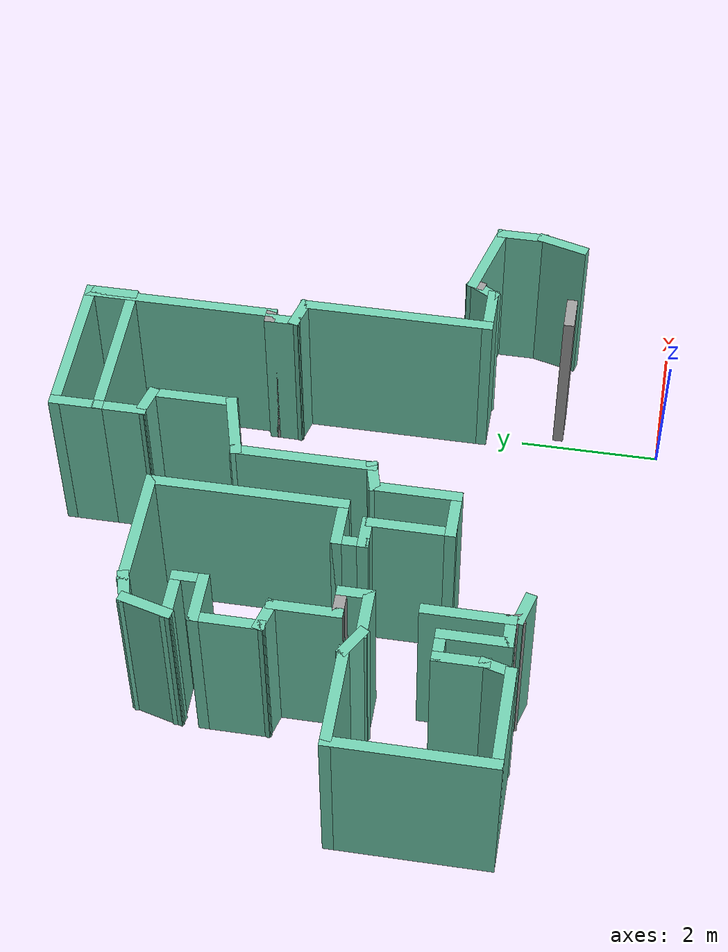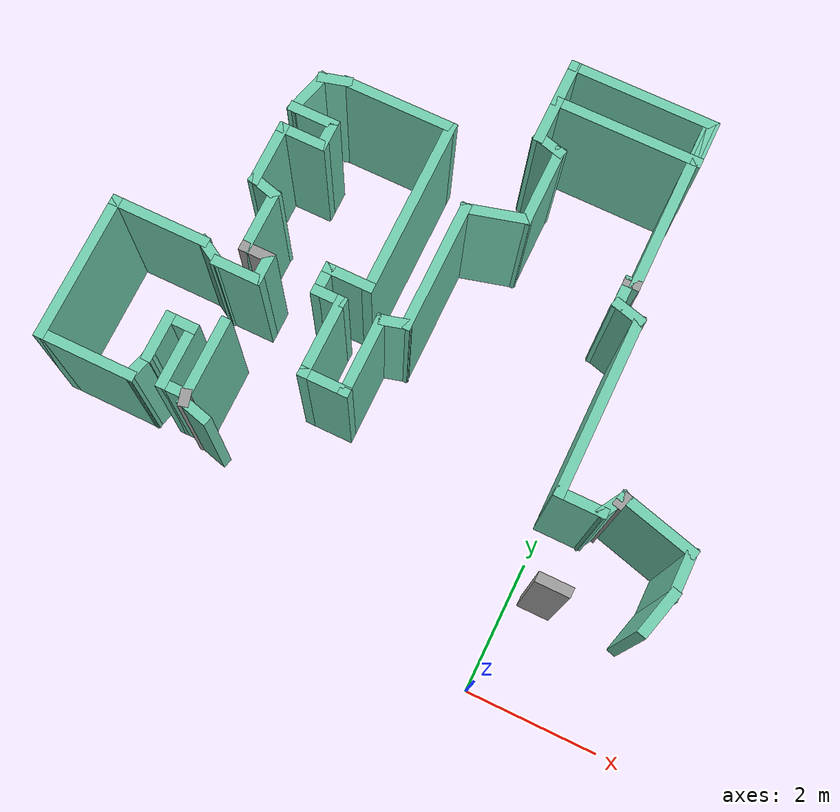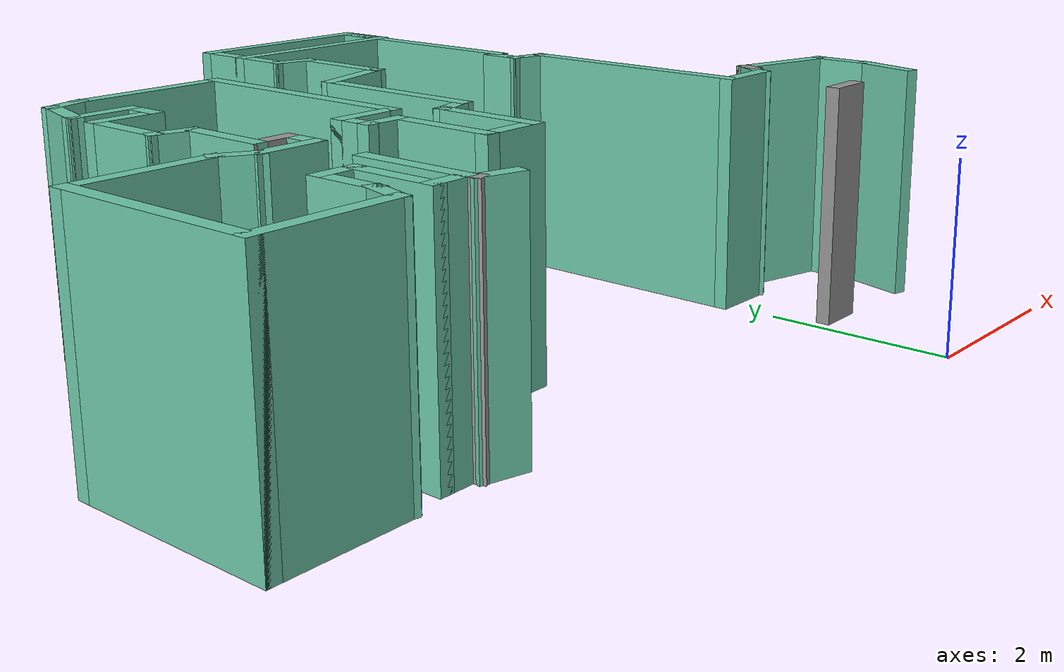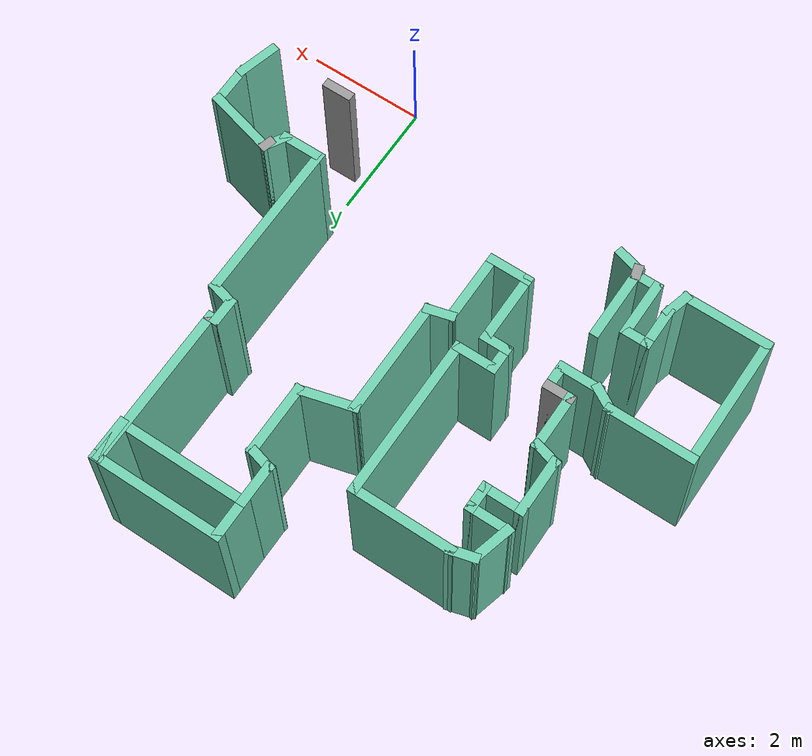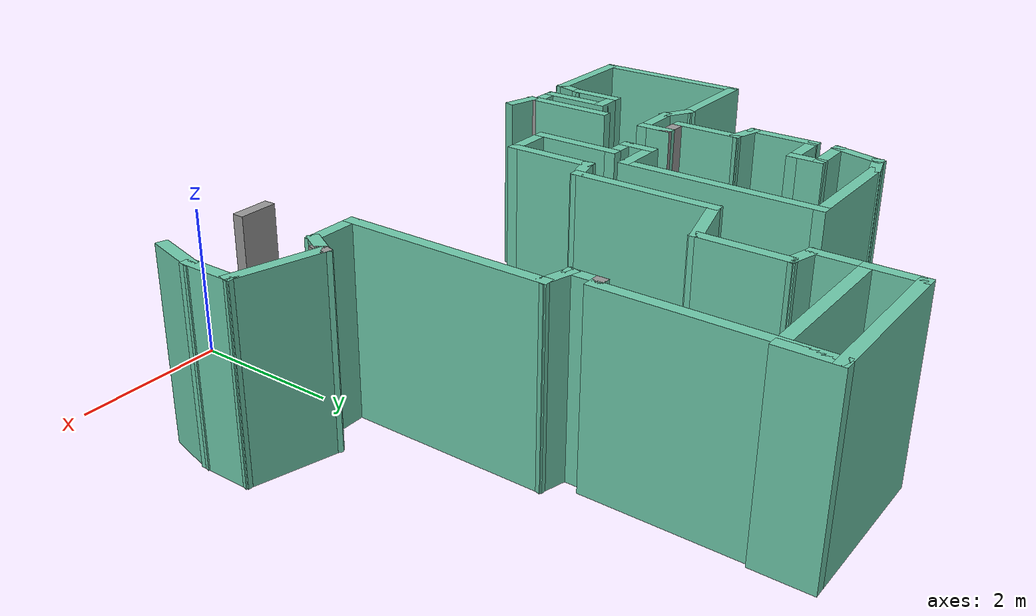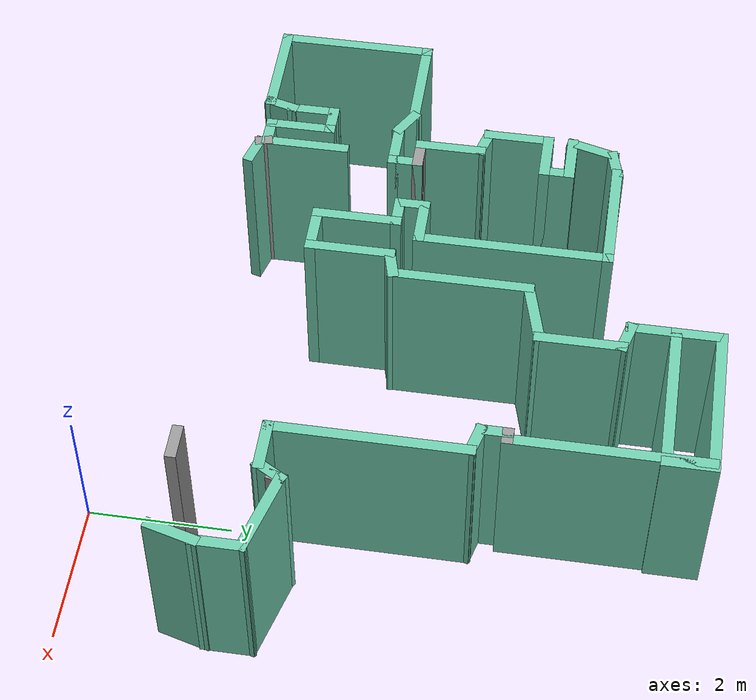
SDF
<sdf version="1.6">
 <model name="map_3">
  <pose>-1.57368 2.22942 0 0 -0 0</pose>
  <link name="Wall_0">
   <collision name="Wall_0_Collision">
    <geometry><box><size>2.25 0.15 2.5</size></box></geometry>
    <pose>0 0 1.25 0 -0 0</pose>
   </collision>
   <visual name="Wall_0_Visual">
    <pose>0 0 1.25 0 -0 0</pose>
    <geometry><box><size>2.25 0.15 2.5</size></box></geometry>
    <material>
     <script><uri>file://media/materials/scripts/gazebo.material</uri><name>Gazebo/Grey</name></script>
     <ambient>0.435294 0.796078 0.67451 1</ambient>
    </material>
    <meta><layer>0</layer></meta>
   </visual>
   <pose>0.303175 6.04258 0 0 -0 3.14159</pose>
  </link>
  <link name="Wall_1">
   <collision name="Wall_1_Collision">
    <geometry><box><size>0.75 0.15 2.5</size></box></geometry>
    <pose>0 0 1.25 0 -0 0</pose>
   </collision>
   <visual name="Wall_1_Visual">
    <pose>0 0 1.25 0 -0 0</pose>
    <geometry><box><size>0.75 0.15 2.5</size></box></geometry>
    <material>
     <script><uri>file://media/materials/scripts/gazebo.material</uri><name>Gazebo/Grey</name></script>
     <ambient>0.435294 0.796078 0.67451 1</ambient>
    </material>
    <meta><layer>0</layer></meta>
   </visual>
   <pose>-0.746825 5.74258 0 0 -0 -1.5708</pose>
  </link>
  <link name="Wall_10">
   <collision name="Wall_10_Collision">
    <geometry><box><size>0.5 0.15 2.5</size></box></geometry>
    <pose>0 0 1.25 0 -0 0</pose>
   </collision>
   <visual name="Wall_10_Visual">
    <pose>0 0 1.25 0 -0 0</pose>
    <geometry><box><size>0.5 0.15 2.5</size></box></geometry>
    <material>
     <script><uri>file://media/materials/scripts/gazebo.material</uri><name>Gazebo/Grey</name></script>
     <ambient>0.435294 0.796078 0.67451 1</ambient>
    </material>
    <meta><layer>0</layer></meta>
   </visual>
   <pose>-1.39882 1.53671 0 0 -0 -2.87979</pose>
  </link>
  <link name="Wall_101">
   <collision name="Wall_101_Collision">
    <geometry><box><size>0.75 0.15 2.5</size></box></geometry>
    <pose>0 0 1.25 0 -0 0</pose>
   </collision>
   <visual name="Wall_101_Visual">
    <pose>0 0 1.25 0 -0 0</pose>
    <geometry><box><size>0.75 0.15 2.5</size></box></geometry>
    <material>
     <script><uri>file://media/materials/scripts/gazebo.material</uri><name>Gazebo/Grey</name></script>
     <ambient>0.435294 0.796078 0.67451 1</ambient>
    </material>
    <meta><layer>0</layer></meta>
   </visual>
   <pose>3.30391 -0.487613 0 0 -0 1.309</pose>
  </link>
  <link name="Wall_102">
   <collision name="Wall_102_Collision">
    <geometry><box><size>0.75 0.15 2.5</size></box></geometry>
    <pose>0 0 1.25 0 -0 0</pose>
   </collision>
   <visual name="Wall_102_Visual">
    <pose>0 0 1.25 0 -0 0</pose>
    <geometry><box><size>0.75 0.15 2.5</size></box></geometry>
    <material>
     <script><uri>file://media/materials/scripts/gazebo.material</uri><name>Gazebo/Grey</name></script>
     <ambient>0.435294 0.796078 0.67451 1</ambient>
    </material>
    <meta><layer>0</layer></meta>
   </visual>
   <pose>3.38155 0.102165 0 0 -0 1.5708</pose>
  </link>
  <link name="Wall_103">
   <collision name="Wall_103_Collision">
    <geometry><box><size>1.25 0.15 2.5</size></box></geometry>
    <pose>0 0 1.25 0 -0 0</pose>
   </collision>
   <visual name="Wall_103_Visual">
    <pose>0 0 1.25 0 -0 0</pose>
    <geometry><box><size>1.25 0.15 2.5</size></box></geometry>
    <material>
     <script><uri>file://media/materials/scripts/gazebo.material</uri><name>Gazebo/Grey</name></script>
     <ambient>0.435294 0.796078 0.67451 1</ambient>
    </material>
    <meta><layer>0</layer></meta>
   </visual>
   <pose>2.85029 0.544515 0 0 -0 2.87979</pose>
  </link>
  <link name="Wall_104">
   <collision name="Wall_104_Collision">
    <geometry><box><size>0.25 0.15 2.5</size></box></geometry>
    <pose>0 0 1.25 0 -0 0</pose>
   </collision>
   <visual name="Wall_104_Visual">
    <pose>0 0 1.25 0 -0 0</pose>
    <geometry><box><size>0.25 0.15 2.5</size></box></geometry>
    <material>
     <script><uri>file://media/materials/scripts/gazebo.material</uri><name>Gazebo/Grey</name></script>
     <ambient>1 1 1 1</ambient>
    </material>
    <meta><layer>0</layer></meta>
   </visual>
   <pose>2.30609 0.638569 0 0 -0 -1.8326</pose>
  </link>
  <link name="Wall_108">
   <collision name="Wall_108_Collision">
    <geometry><box><size>0.5 0.15 2.5</size></box></geometry>
    <pose>0 0 1.25 0 -0 0</pose>
   </collision>
   <visual name="Wall_108_Visual">
    <pose>0 0 1.25 0 -0 0</pose>
    <geometry><box><size>0.5 0.15 2.5</size></box></geometry>
    <material>
     <script><uri>file://media/materials/scripts/gazebo.material</uri><name>Gazebo/Grey</name></script>
     <ambient>0.435294 0.796078 0.67451 1</ambient>
    </material>
    <meta><layer>0</layer></meta>
   </visual>
   <pose>2.23154 0.535311 0 0 -0 -2.0944</pose>
  </link>
  <link name="Wall_109">
   <collision name="Wall_109_Collision">
    <geometry><box><size>0.75 0.15 2.5</size></box></geometry>
    <pose>0 0 1.25 0 -0 0</pose>
   </collision>
   <visual name="Wall_109_Visual">
    <pose>0 0 1.25 0 -0 0</pose>
    <geometry><box><size>0.75 0.15 2.5</size></box></geometry>
    <material>
     <script><uri>file://media/materials/scripts/gazebo.material</uri><name>Gazebo/Grey</name></script>
     <ambient>0.435294 0.796078 0.67451 1</ambient>
    </material>
    <meta><layer>0</layer></meta>
   </visual>
   <pose>1.84404 0.383757 0 0 -0 3.14159</pose>
  </link>
  <link name="Wall_11">
   <collision name="Wall_11_Collision">
    <geometry><box><size>1.25 0.15 2.5</size></box></geometry>
    <pose>0 0 1.25 0 -0 0</pose>
   </collision>
   <visual name="Wall_11_Visual">
    <pose>0 0 1.25 0 -0 0</pose>
    <geometry><box><size>1.25 0.15 2.5</size></box></geometry>
    <material>
     <script><uri>file://media/materials/scripts/gazebo.material</uri><name>Gazebo/Grey</name></script>
     <ambient>0.435294 0.796078 0.67451 1</ambient>
    </material>
    <meta><layer>0</layer></meta>
   </visual>
   <pose>-1.56786 0.941415 0 0 -0 -1.5708</pose>
  </link>
  <link name="Wall_110">
   <collision name="Wall_110_Collision">
    <geometry><box><size>2.75 0.15 2.5</size></box></geometry>
    <pose>0 0 1.25 0 -0 0</pose>
   </collision>
   <visual name="Wall_110_Visual">
    <pose>0 0 1.25 0 -0 0</pose>
    <geometry><box><size>2.75 0.15 2.5</size></box></geometry>
    <material>
     <script><uri>file://media/materials/scripts/gazebo.material</uri><name>Gazebo/Grey</name></script>
     <ambient>0.435294 0.796078 0.67451 1</ambient>
    </material>
    <meta><layer>0</layer></meta>
   </visual>
   <pose>1.54404 1.68376 0 0 -0 1.5708</pose>
  </link>
  <link name="Wall_111">
   <collision name="Wall_111_Collision">
    <geometry><box><size>0.5 0.15 2.5</size></box></geometry>
    <pose>0 0 1.25 0 -0 0</pose>
   </collision>
   <visual name="Wall_111_Visual">
    <pose>0 0 1.25 0 -0 0</pose>
    <geometry><box><size>0.5 0.15 2.5</size></box></geometry>
    <material>
     <script><uri>file://media/materials/scripts/gazebo.material</uri><name>Gazebo/Grey</name></script>
     <ambient>0.435294 0.796078 0.67451 1</ambient>
    </material>
    <meta><layer>0</layer></meta>
   </visual>
   <pose>1.375 3.02905 0 0 -0 2.87979</pose>
  </link>
  <link name="Wall_112">
   <collision name="Wall_112_Collision">
    <geometry><box><size>0.5 0.15 2.5</size></box></geometry>
    <pose>0 0 1.25 0 -0 0</pose>
   </collision>
   <visual name="Wall_112_Visual">
    <pose>0 0 1.25 0 -0 0</pose>
    <geometry><box><size>0.5 0.15 2.5</size></box></geometry>
    <material>
     <script><uri>file://media/materials/scripts/gazebo.material</uri><name>Gazebo/Grey</name></script>
     <ambient>0.435294 0.796078 0.67451 1</ambient>
    </material>
    <meta><layer>0</layer></meta>
   </visual>
   <pose>1.20596 3.24934 0 0 -0 1.5708</pose>
  </link>
  <link name="Wall_113">
   <collision name="Wall_113_Collision">
    <geometry><box><size>0.25 0.15 2.5</size></box></geometry>
    <pose>0 0 1.25 0 -0 0</pose>
   </collision>
   <visual name="Wall_113_Visual">
    <pose>0 0 1.25 0 -0 0</pose>
    <geometry><box><size>0.25 0.15 2.5</size></box></geometry>
    <material>
     <script><uri>file://media/materials/scripts/gazebo.material</uri><name>Gazebo/Grey</name></script>
     <ambient>1 1 1 1</ambient>
    </material>
    <meta><layer>0</layer></meta>
   </visual>
   <pose>1.25596 3.42434 0 0 -0 0</pose>
  </link>
  <link name="Wall_114">
   <collision name="Wall_114_Collision">
    <geometry><box><size>2.75 0.15 2.5</size></box></geometry>
    <pose>0 0 1.25 0 -0 0</pose>
   </collision>
   <visual name="Wall_114_Visual">
    <pose>0 0 1.25 0 -0 0</pose>
    <geometry><box><size>2.75 0.15 2.5</size></box></geometry>
    <material>
     <script><uri>file://media/materials/scripts/gazebo.material</uri><name>Gazebo/Grey</name></script>
     <ambient>0.435294 0.796078 0.67451 1</ambient>
    </material>
    <meta><layer>0</layer></meta>
   </visual>
   <pose>1.30596 4.72434 0 0 -0 1.5708</pose>
  </link>
  <link name="Wall_12">
   <collision name="Wall_12_Collision">
    <geometry><box><size>0.75 0.15 2.5</size></box></geometry>
    <pose>0 0 1.25 0 -0 0</pose>
   </collision>
   <visual name="Wall_12_Visual">
    <pose>0 0 1.25 0 -0 0</pose>
    <geometry><box><size>0.75 0.15 2.5</size></box></geometry>
    <material>
     <script><uri>file://media/materials/scripts/gazebo.material</uri><name>Gazebo/Grey</name></script>
     <ambient>0.435294 0.796078 0.67451 1</ambient>
    </material>
    <meta><layer>0</layer></meta>
   </visual>
   <pose>-1.86786 0.391415 0 0 -0 3.14159</pose>
  </link>
  <link name="Wall_18">
   <collision name="Wall_18_Collision">
    <geometry><box><size>1.25 0.15 2.5</size></box></geometry>
    <pose>0 0 1.25 0 -0 0</pose>
   </collision>
   <visual name="Wall_18_Visual">
    <pose>0 0 1.25 0 -0 0</pose>
    <geometry><box><size>1.25 0.15 2.5</size></box></geometry>
    <material>
     <script><uri>file://media/materials/scripts/gazebo.material</uri><name>Gazebo/Grey</name></script>
     <ambient>0.435294 0.796078 0.67451 1</ambient>
    </material>
    <meta><layer>0</layer></meta>
   </visual>
   <pose>-2.16786 0.941415 0 0 -0 1.5708</pose>
  </link>
  <link name="Wall_19">
   <collision name="Wall_19_Collision">
    <geometry><box><size>0.5 0.15 2.5</size></box></geometry>
    <pose>0 0 1.25 0 -0 0</pose>
   </collision>
   <visual name="Wall_19_Visual">
    <pose>0 0 1.25 0 -0 0</pose>
    <geometry><box><size>0.5 0.15 2.5</size></box></geometry>
    <material>
     <script><uri>file://media/materials/scripts/gazebo.material</uri><name>Gazebo/Grey</name></script>
     <ambient>0.435294 0.796078 0.67451 1</ambient>
    </material>
    <meta><layer>0</layer></meta>
   </visual>
   <pose>-2.34286 1.49141 0 0 -0 3.14159</pose>
  </link>
  <link name="Wall_2">
   <collision name="Wall_2_Collision">
    <geometry><box><size>2.25 0.15 2.5</size></box></geometry>
    <pose>0 0 1.25 0 -0 0</pose>
   </collision>
   <visual name="Wall_2_Visual">
    <pose>0 0 1.25 0 -0 0</pose>
    <geometry><box><size>2.25 0.15 2.5</size></box></geometry>
    <material>
     <script><uri>file://media/materials/scripts/gazebo.material</uri><name>Gazebo/Grey</name></script>
     <ambient>0.435294 0.796078 0.67451 1</ambient>
    </material>
    <meta><layer>0</layer></meta>
   </visual>
   <pose>0.303175 5.44259 0 0 -0 0</pose>
  </link>
  <link name="Wall_22">
   <collision name="Wall_22_Collision">
    <geometry><box><size>0.5 0.15 2.5</size></box></geometry>
    <pose>0 0 1.25 0 -0 0</pose>
   </collision>
   <visual name="Wall_22_Visual">
    <pose>0 0 1.25 0 -0 0</pose>
    <geometry><box><size>0.5 0.15 2.5</size></box></geometry>
    <material>
     <script><uri>file://media/materials/scripts/gazebo.material</uri><name>Gazebo/Grey</name></script>
     <ambient>0.435294 0.796078 0.67451 1</ambient>
    </material>
    <meta><layer>0</layer></meta>
   </visual>
   <pose>-2.51786 1.66641 0 0 -0 1.5708</pose>
  </link>
  <link name="Wall_23">
   <collision name="Wall_23_Collision">
    <geometry><box><size>0.75 0.15 2.5</size></box></geometry>
    <pose>0 0 1.25 0 -0 0</pose>
   </collision>
   <visual name="Wall_23_Visual">
    <pose>0 0 1.25 0 -0 0</pose>
    <geometry><box><size>0.75 0.15 2.5</size></box></geometry>
    <material>
     <script><uri>file://media/materials/scripts/gazebo.material</uri><name>Gazebo/Grey</name></script>
     <ambient>0.435294 0.796078 0.67451 1</ambient>
    </material>
    <meta><layer>0</layer></meta>
   </visual>
   <pose>-2.21786 1.84142 0 0 -0 0</pose>
  </link>
  <link name="Wall_24">
   <collision name="Wall_24_Collision">
    <geometry><box><size>2.75 0.15 2.5</size></box></geometry>
    <pose>0 0 1.25 0 -0 0</pose>
   </collision>
   <visual name="Wall_24_Visual">
    <pose>0 0 1.25 0 -0 0</pose>
    <geometry><box><size>2.75 0.15 2.5</size></box></geometry>
    <material>
     <script><uri>file://media/materials/scripts/gazebo.material</uri><name>Gazebo/Grey</name></script>
     <ambient>0.435294 0.796078 0.67451 1</ambient>
    </material>
    <meta><layer>0</layer></meta>
   </visual>
   <pose>-1.91786 3.14141 0 0 -0 1.5708</pose>
  </link>
  <link name="Wall_25">
   <collision name="Wall_25_Collision">
    <geometry><box><size>1.75 0.15 2.5</size></box></geometry>
    <pose>0 0 1.25 0 -0 0</pose>
   </collision>
   <visual name="Wall_25_Visual">
    <pose>0 0 1.25 0 -0 0</pose>
    <geometry><box><size>1.75 0.15 2.5</size></box></geometry>
    <material>
     <script><uri>file://media/materials/scripts/gazebo.material</uri><name>Gazebo/Grey</name></script>
     <ambient>0.435294 0.796078 0.67451 1</ambient>
    </material>
    <meta><layer>0</layer></meta>
   </visual>
   <pose>-2.71786 4.44142 0 0 -0 3.14159</pose>
  </link>
  <link name="Wall_26">
   <collision name="Wall_26_Collision">
    <geometry><box><size>0.5 0.15 2.5</size></box></geometry>
    <pose>0 0 1.25 0 -0 0</pose>
   </collision>
   <visual name="Wall_26_Visual">
    <pose>0 0 1.25 0 -0 0</pose>
    <geometry><box><size>0.5 0.15 2.5</size></box></geometry>
    <material>
     <script><uri>file://media/materials/scripts/gazebo.material</uri><name>Gazebo/Grey</name></script>
     <ambient>0.435294 0.796078 0.67451 1</ambient>
    </material>
    <meta><layer>0</layer></meta>
   </visual>
   <pose>-3.6869 4.39612 0 0 -0 -2.87979</pose>
  </link>
  <link name="Wall_27">
   <collision name="Wall_27_Collision">
    <geometry><box><size>0.75 0.15 2.5</size></box></geometry>
    <pose>0 0 1.25 0 -0 0</pose>
   </collision>
   <visual name="Wall_27_Visual">
    <pose>0 0 1.25 0 -0 0</pose>
    <geometry><box><size>0.75 0.15 2.5</size></box></geometry>
    <material>
     <script><uri>file://media/materials/scripts/gazebo.material</uri><name>Gazebo/Grey</name></script>
     <ambient>0.435294 0.796078 0.67451 1</ambient>
    </material>
    <meta><layer>0</layer></meta>
   </visual>
   <pose>-3.93358 4.06105 0 0 -0 -1.8326</pose>
  </link>
  <link name="Wall_28">
   <collision name="Wall_28_Collision">
    <geometry><box><size>0.75 0.15 2.5</size></box></geometry>
    <pose>0 0 1.25 0 -0 0</pose>
   </collision>
   <visual name="Wall_28_Visual">
    <pose>0 0 1.25 0 -0 0</pose>
    <geometry><box><size>0.75 0.15 2.5</size></box></geometry>
    <material>
     <script><uri>file://media/materials/scripts/gazebo.material</uri><name>Gazebo/Grey</name></script>
     <ambient>0.435294 0.796078 0.67451 1</ambient>
    </material>
    <meta><layer>0</layer></meta>
   </visual>
   <pose>-3.71123 3.77127 0 0 -0 0</pose>
  </link>
  <link name="Wall_29">
   <collision name="Wall_29_Collision">
    <geometry><box><size>0.5 0.15 2.5</size></box></geometry>
    <pose>0 0 1.25 0 -0 0</pose>
   </collision>
   <visual name="Wall_29_Visual">
    <pose>0 0 1.25 0 -0 0</pose>
    <geometry><box><size>0.5 0.15 2.5</size></box></geometry>
    <material>
     <script><uri>file://media/materials/scripts/gazebo.material</uri><name>Gazebo/Grey</name></script>
     <ambient>0.435294 0.796078 0.67451 1</ambient>
    </material>
    <meta><layer>0</layer></meta>
   </visual>
   <pose>-3.41123 3.59627 0 0 -0 -1.5708</pose>
  </link>
  <link name="Wall_3">
   <collision name="Wall_3_Collision">
    <geometry><box><size>0.75 0.15 2.5</size></box></geometry>
    <pose>0 0 1.25 0 -0 0</pose>
   </collision>
   <visual name="Wall_3_Visual">
    <pose>0 0 1.25 0 -0 0</pose>
    <geometry><box><size>0.75 0.15 2.5</size></box></geometry>
    <material>
     <script><uri>file://media/materials/scripts/gazebo.material</uri><name>Gazebo/Grey</name></script>
     <ambient>0.435294 0.796078 0.67451 1</ambient>
    </material>
    <meta><layer>0</layer></meta>
   </visual>
   <pose>1.35318 5.74258 0 0 -0 1.5708</pose>
  </link>
  <link name="Wall_30">
   <collision name="Wall_30_Collision">
    <geometry><box><size>0.75 0.15 2.5</size></box></geometry>
    <pose>0 0 1.25 0 -0 0</pose>
   </collision>
   <visual name="Wall_30_Visual">
    <pose>0 0 1.25 0 -0 0</pose>
    <geometry><box><size>0.75 0.15 2.5</size></box></geometry>
    <material>
     <script><uri>file://media/materials/scripts/gazebo.material</uri><name>Gazebo/Grey</name></script>
     <ambient>0.435294 0.796078 0.67451 1</ambient>
    </material>
    <meta><layer>0</layer></meta>
   </visual>
   <pose>-3.71123 3.42127 0 0 -0 3.14159</pose>
  </link>
  <link name="Wall_31">
   <collision name="Wall_31_Collision">
    <geometry><box><size>1 0.15 2.5</size></box></geometry>
    <pose>0 0 1.25 0 -0 0</pose>
   </collision>
   <visual name="Wall_31_Visual">
    <pose>0 0 1.25 0 -0 0</pose>
    <geometry><box><size>1 0.15 2.5</size></box></geometry>
    <material>
     <script><uri>file://media/materials/scripts/gazebo.material</uri><name>Gazebo/Grey</name></script>
     <ambient>0.435294 0.796078 0.67451 1</ambient>
    </material>
    <meta><layer>0</layer></meta>
   </visual>
   <pose>-4.01123 2.99627 0 0 -0 -1.5708</pose>
  </link>
  <link name="Wall_32">
   <collision name="Wall_32_Collision">
    <geometry><box><size>0.5 0.15 2.5</size></box></geometry>
    <pose>0 0 1.25 0 -0 0</pose>
   </collision>
   <visual name="Wall_32_Visual">
    <pose>0 0 1.25 0 -0 0</pose>
    <geometry><box><size>0.5 0.15 2.5</size></box></geometry>
    <material>
     <script><uri>file://media/materials/scripts/gazebo.material</uri><name>Gazebo/Grey</name></script>
     <ambient>0.435294 0.796078 0.67451 1</ambient>
    </material>
    <meta><layer>0</layer></meta>
   </visual>
   <pose>-3.84219 2.52598 0 0 -0 -0.261799</pose>
  </link>
  <link name="Wall_33">
   <collision name="Wall_33_Collision">
    <geometry><box><size>1 0.15 2.5</size></box></geometry>
    <pose>0 0 1.25 0 -0 0</pose>
   </collision>
   <visual name="Wall_33_Visual">
    <pose>0 0 1.25 0 -0 0</pose>
    <geometry><box><size>1 0.15 2.5</size></box></geometry>
    <material>
     <script><uri>file://media/materials/scripts/gazebo.material</uri><name>Gazebo/Grey</name></script>
     <ambient>0.435294 0.796078 0.67451 1</ambient>
    </material>
    <meta><layer>0</layer></meta>
   </visual>
   <pose>-3.67315 2.05569 0 0 -0 -1.5708</pose>
  </link>
  <link name="Wall_34">
   <collision name="Wall_34_Collision">
    <geometry><box><size>0.5 0.15 2.5</size></box></geometry>
    <pose>0 0 1.25 0 -0 0</pose>
   </collision>
   <visual name="Wall_34_Visual">
    <pose>0 0 1.25 0 -0 0</pose>
    <geometry><box><size>0.5 0.15 2.5</size></box></geometry>
    <material>
     <script><uri>file://media/materials/scripts/gazebo.material</uri><name>Gazebo/Grey</name></script>
     <ambient>1 1 1 1</ambient>
    </material>
    <meta><layer>0</layer></meta>
   </visual>
   <pose>-3.49815 1.63069 0 0 -0 0</pose>
  </link>
  <link name="Wall_35">
   <collision name="Wall_35_Collision">
    <geometry><box><size>0.5 0.15 2.5</size></box></geometry>
    <pose>0 0 1.25 0 -0 0</pose>
   </collision>
   <visual name="Wall_35_Visual">
    <pose>0 0 1.25 0 -0 0</pose>
    <geometry><box><size>0.5 0.15 2.5</size></box></geometry>
    <material>
     <script><uri>file://media/materials/scripts/gazebo.material</uri><name>Gazebo/Grey</name></script>
     <ambient>0.435294 0.796078 0.67451 1</ambient>
    </material>
    <meta><layer>0</layer></meta>
   </visual>
   <pose>-3.32315 1.45569 0 0 -0 -1.5708</pose>
  </link>
  <link name="Wall_36">
   <collision name="Wall_36_Collision">
    <geometry><box><size>0.75 0.15 2.5</size></box></geometry>
    <pose>0 0 1.25 0 -0 0</pose>
   </collision>
   <visual name="Wall_36_Visual">
    <pose>0 0 1.25 0 -0 0</pose>
    <geometry><box><size>0.75 0.15 2.5</size></box></geometry>
    <material>
     <script><uri>file://media/materials/scripts/gazebo.material</uri><name>Gazebo/Grey</name></script>
     <ambient>0.435294 0.796078 0.67451 1</ambient>
    </material>
    <meta><layer>0</layer></meta>
   </visual>
   <pose>-3.62315 1.28069 0 0 -0 3.14159</pose>
  </link>
  <link name="Wall_37">
   <collision name="Wall_37_Collision">
    <geometry><box><size>0.5 0.15 2.5</size></box></geometry>
    <pose>0 0 1.25 0 -0 0</pose>
   </collision>
   <visual name="Wall_37_Visual">
    <pose>0 0 1.25 0 -0 0</pose>
    <geometry><box><size>0.5 0.15 2.5</size></box></geometry>
    <material>
     <script><uri>file://media/materials/scripts/gazebo.material</uri><name>Gazebo/Grey</name></script>
     <ambient>0.435294 0.796078 0.67451 1</ambient>
    </material>
    <meta><layer>0</layer></meta>
   </visual>
   <pose>-4.07471 1.36819 0 0 -0 2.61799</pose>
  </link>
  <link name="Wall_38">
   <collision name="Wall_38_Collision">
    <geometry><box><size>1.5 0.15 2.5</size></box></geometry>
    <pose>0 0 1.25 0 -0 0</pose>
   </collision>
   <visual name="Wall_38_Visual">
    <pose>0 0 1.25 0 -0 0</pose>
    <geometry><box><size>1.5 0.15 2.5</size></box></geometry>
    <material>
     <script><uri>file://media/materials/scripts/gazebo.material</uri><name>Gazebo/Grey</name></script>
     <ambient>0.435294 0.796078 0.67451 1</ambient>
    </material>
    <meta><layer>0</layer></meta>
   </visual>
   <pose>-4.90126 1.45569 0 0 -0 3.14159</pose>
  </link>
  <link name="Wall_43">
   <collision name="Wall_43_Collision">
    <geometry><box><size>2.25 0.15 2.5</size></box></geometry>
    <pose>0 0 1.25 0 -0 0</pose>
   </collision>
   <visual name="Wall_43_Visual">
    <pose>0 0 1.25 0 -0 0</pose>
    <geometry><box><size>2.25 0.15 2.5</size></box></geometry>
    <material>
     <script><uri>file://media/materials/scripts/gazebo.material</uri><name>Gazebo/Grey</name></script>
     <ambient>0.435294 0.796078 0.67451 1</ambient>
    </material>
    <meta><layer>0</layer></meta>
   </visual>
   <pose>-5.57626 0.405686 0 0 -0 -1.5708</pose>
  </link>
  <link name="Wall_44">
   <collision name="Wall_44_Collision">
    <geometry><box><size>1.5 0.15 2.5</size></box></geometry>
    <pose>0 0 1.25 0 -0 0</pose>
   </collision>
   <visual name="Wall_44_Visual">
    <pose>0 0 1.25 0 -0 0</pose>
    <geometry><box><size>1.5 0.15 2.5</size></box></geometry>
    <material>
     <script><uri>file://media/materials/scripts/gazebo.material</uri><name>Gazebo/Grey</name></script>
     <ambient>0.435294 0.796078 0.67451 1</ambient>
    </material>
    <meta><layer>0</layer></meta>
   </visual>
   <pose>-4.90126 -0.644314 0 0 -0 0</pose>
  </link>
  <link name="Wall_45">
   <collision name="Wall_45_Collision">
    <geometry><box><size>0.5 0.15 2.5</size></box></geometry>
    <pose>0 0 1.25 0 -0 0</pose>
   </collision>
   <visual name="Wall_45_Visual">
    <pose>0 0 1.25 0 -0 0</pose>
    <geometry><box><size>0.5 0.15 2.5</size></box></geometry>
    <material>
     <script><uri>file://media/materials/scripts/gazebo.material</uri><name>Gazebo/Grey</name></script>
     <ambient>0.435294 0.796078 0.67451 1</ambient>
    </material>
    <meta><layer>0</layer></meta>
   </visual>
   <pose>-4.18097 -0.475277 0 0 -0 1.309</pose>
  </link>
  <link name="Wall_46">
   <collision name="Wall_46_Collision">
    <geometry><box><size>0.75 0.15 2.5</size></box></geometry>
    <pose>0 0 1.25 0 -0 0</pose>
   </collision>
   <visual name="Wall_46_Visual">
    <pose>0 0 1.25 0 -0 0</pose>
    <geometry><box><size>0.75 0.15 2.5</size></box></geometry>
    <material>
     <script><uri>file://media/materials/scripts/gazebo.material</uri><name>Gazebo/Grey</name></script>
     <ambient>0.435294 0.796078 0.67451 1</ambient>
    </material>
    <meta><layer>0</layer></meta>
   </visual>
   <pose>-4.13568 -0.00624 0 0 -0 1.5708</pose>
  </link>
  <link name="Wall_47">
   <collision name="Wall_47_Collision">
    <geometry><box><size>0.5 0.15 2.5</size></box></geometry>
    <pose>0 0 1.25 0 -0 0</pose>
   </collision>
   <visual name="Wall_47_Visual">
    <pose>0 0 1.25 0 -0 0</pose>
    <geometry><box><size>0.5 0.15 2.5</size></box></geometry>
    <material>
     <script><uri>file://media/materials/scripts/gazebo.material</uri><name>Gazebo/Grey</name></script>
     <ambient>0.435294 0.796078 0.67451 1</ambient>
    </material>
    <meta><layer>0</layer></meta>
   </visual>
   <pose>-3.96068 0.29376 0 0 -0 0</pose>
  </link>
  <link name="Wall_48">
   <collision name="Wall_48_Collision">
    <geometry><box><size>1 0.15 2.5</size></box></geometry>
    <pose>0 0 1.25 0 -0 0</pose>
   </collision>
   <visual name="Wall_48_Visual">
    <pose>0 0 1.25 0 -0 0</pose>
    <geometry><box><size>1 0.15 2.5</size></box></geometry>
    <material>
     <script><uri>file://media/materials/scripts/gazebo.material</uri><name>Gazebo/Grey</name></script>
     <ambient>0.435294 0.796078 0.67451 1</ambient>
    </material>
    <meta><layer>0</layer></meta>
   </visual>
   <pose>-3.78568 -0.13124 0 0 -0 -1.5708</pose>
  </link>
  <link name="Wall_49">
   <collision name="Wall_49_Collision">
    <geometry><box><size>0.5 0.15 2.5</size></box></geometry>
    <pose>0 0 1.25 0 -0 0</pose>
   </collision>
   <visual name="Wall_49_Visual">
    <pose>0 0 1.25 0 -0 0</pose>
    <geometry><box><size>0.5 0.15 2.5</size></box></geometry>
    <material>
     <script><uri>file://media/materials/scripts/gazebo.material</uri><name>Gazebo/Grey</name></script>
     <ambient>0.435294 0.796078 0.67451 1</ambient>
    </material>
    <meta><layer>0</layer></meta>
   </visual>
   <pose>-3.61068 -0.55624 0 0 -0 0</pose>
  </link>
  <link name="Wall_5">
   <collision name="Wall_5_Collision">
    <geometry><box><size>0.75 0.15 2.5</size></box></geometry>
    <pose>0 0 1.25 0 -0 0</pose>
   </collision>
   <visual name="Wall_5_Visual">
    <pose>0 0 1.25 0 -0 0</pose>
    <geometry><box><size>0.75 0.15 2.5</size></box></geometry>
    <material>
     <script><uri>file://media/materials/scripts/gazebo.material</uri><name>Gazebo/Grey</name></script>
     <ambient>0.435294 0.796078 0.67451 1</ambient>
    </material>
    <meta><layer>0</layer></meta>
   </visual>
   <pose>-0.746825 5.14258 0 0 -0 -1.5708</pose>
  </link>
  <link name="Wall_50">
   <collision name="Wall_50_Collision">
    <geometry><box><size>1.25 0.15 2.5</size></box></geometry>
    <pose>0 0 1.25 0 -0 0</pose>
   </collision>
   <visual name="Wall_50_Visual">
    <pose>0 0 1.25 0 -0 0</pose>
    <geometry><box><size>1.25 0.15 2.5</size></box></geometry>
    <material>
     <script><uri>file://media/materials/scripts/gazebo.material</uri><name>Gazebo/Grey</name></script>
     <ambient>0.435294 0.796078 0.67451 1</ambient>
    </material>
    <meta><layer>0</layer></meta>
   </visual>
   <pose>-3.43568 -0.00624 0 0 -0 1.5708</pose>
  </link>
  <link name="Wall_54">
   <collision name="Wall_54_Collision">
    <geometry><box><size>0.25 0.15 2.5</size></box></geometry>
    <pose>0 0 1.25 0 -0 0</pose>
   </collision>
   <visual name="Wall_54_Visual">
    <pose>0 0 1.25 0 -0 0</pose>
    <geometry><box><size>0.25 0.15 2.5</size></box></geometry>
    <material>
     <script><uri>file://media/materials/scripts/gazebo.material</uri><name>Gazebo/Grey</name></script>
     <ambient>1 1 1 1</ambient>
    </material>
    <meta><layer>0</layer></meta>
   </visual>
   <pose>-3.42273 -0.604536 0 0 -0 -1.309</pose>
  </link>
  <link name="Wall_55">
   <collision name="Wall_55_Collision">
    <geometry><box><size>0.5 0.15 2.5</size></box></geometry>
    <pose>0 0 1.25 0 -0 0</pose>
   </collision>
   <visual name="Wall_55_Visual">
    <pose>0 0 1.25 0 -0 0</pose>
    <geometry><box><size>0.5 0.15 2.5</size></box></geometry>
    <material>
     <script><uri>file://media/materials/scripts/gazebo.material</uri><name>Gazebo/Grey</name></script>
     <ambient>0.435294 0.796078 0.67451 1</ambient>
    </material>
    <meta><layer>0</layer></meta>
   </visual>
   <pose>-3.24076 -0.698126 0 0 -0 -0.261799</pose>
  </link>
  <link name="Wall_6">
   <collision name="Wall_6_Collision">
    <geometry><box><size>0.5 0.15 2.5</size></box></geometry>
    <pose>0 0 1.25 0 -0 0</pose>
   </collision>
   <visual name="Wall_6_Visual">
    <pose>0 0 1.25 0 -0 0</pose>
    <geometry><box><size>0.5 0.15 2.5</size></box></geometry>
    <material>
     <script><uri>file://media/materials/scripts/gazebo.material</uri><name>Gazebo/Grey</name></script>
     <ambient>0.435294 0.796078 0.67451 1</ambient>
    </material>
    <meta><layer>0</layer></meta>
   </visual>
   <pose>-0.577788 4.79729 0 0 -0 -0.261799</pose>
  </link>
  <link name="Wall_7">
   <collision name="Wall_7_Collision">
    <geometry><box><size>1.25 0.15 2.5</size></box></geometry>
    <pose>0 0 1.25 0 -0 0</pose>
   </collision>
   <visual name="Wall_7_Visual">
    <pose>0 0 1.25 0 -0 0</pose>
    <geometry><box><size>1.25 0.15 2.5</size></box></geometry>
    <material>
     <script><uri>file://media/materials/scripts/gazebo.material</uri><name>Gazebo/Grey</name></script>
     <ambient>0.435294 0.796078 0.67451 1</ambient>
    </material>
    <meta><layer>0</layer></meta>
   </visual>
   <pose>-0.408751 4.202 0 0 -0 -1.5708</pose>
  </link>
  <link name="Wall_8">
   <collision name="Wall_8_Collision">
    <geometry><box><size>1 0.15 2.5</size></box></geometry>
    <pose>0 0 1.25 0 -0 0</pose>
   </collision>
   <visual name="Wall_8_Visual">
    <pose>0 0 1.25 0 -0 0</pose>
    <geometry><box><size>1 0.15 2.5</size></box></geometry>
    <material>
     <script><uri>file://media/materials/scripts/gazebo.material</uri><name>Gazebo/Grey</name></script>
     <ambient>0.435294 0.796078 0.67451 1</ambient>
    </material>
    <meta><layer>0</layer></meta>
   </visual>
   <pose>-0.81927 3.542 0 0 -0 -2.87979</pose>
  </link>
  <link name="Wall_89">
   <collision name="Wall_89_Collision">
    <geometry><box><size>0.5 0.15 2.5</size></box></geometry>
    <pose>0 0 1.25 0 -0 0</pose>
   </collision>
   <visual name="Wall_89_Visual">
    <pose>0 0 1.25 0 -0 0</pose>
    <geometry><box><size>0.5 0.15 2.5</size></box></geometry>
    <material>
     <script><uri>file://media/materials/scripts/gazebo.material</uri><name>Gazebo/Grey</name></script>
     <ambient>1 1 1 1</ambient>
    </material>
    <meta><layer>0</layer></meta>
   </visual>
   <pose>1.96522 -0.740211 0 0 -0 0</pose>
  </link>
  <link name="Wall_9">
   <collision name="Wall_9_Collision">
    <geometry><box><size>2 0.15 2.5</size></box></geometry>
    <pose>0 0 1.25 0 -0 0</pose>
   </collision>
   <visual name="Wall_9_Visual">
    <pose>0 0 1.25 0 -0 0</pose>
    <geometry><box><size>2 0.15 2.5</size></box></geometry>
    <material>
     <script><uri>file://media/materials/scripts/gazebo.material</uri><name>Gazebo/Grey</name></script>
     <ambient>0.435294 0.796078 0.67451 1</ambient>
    </material>
    <meta><layer>0</layer></meta>
   </visual>
   <pose>-1.22979 2.507 0 0 -0 -1.5708</pose>
  </link>
  <static>1</static>
 </model>
</sdf>
